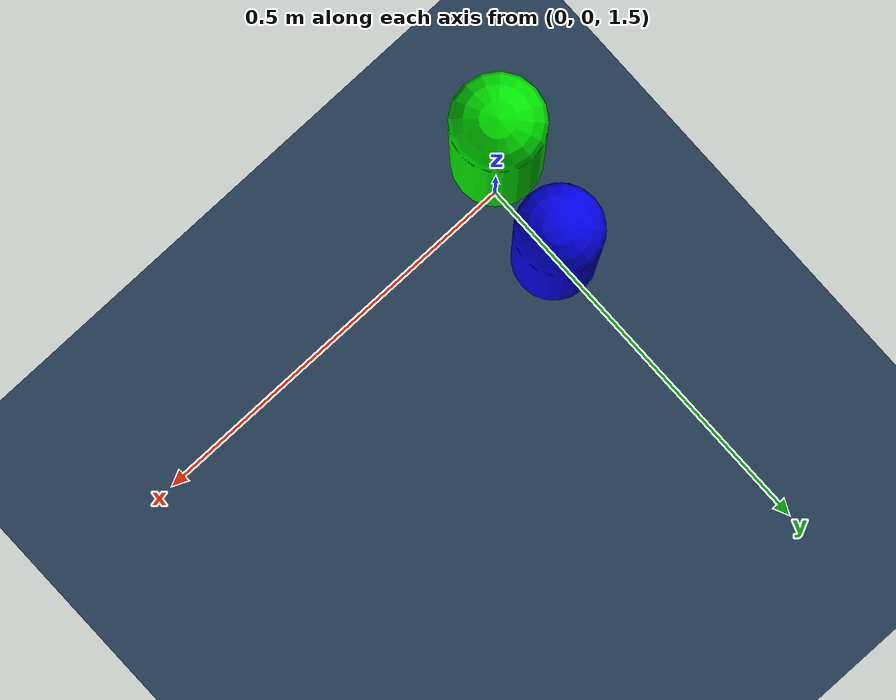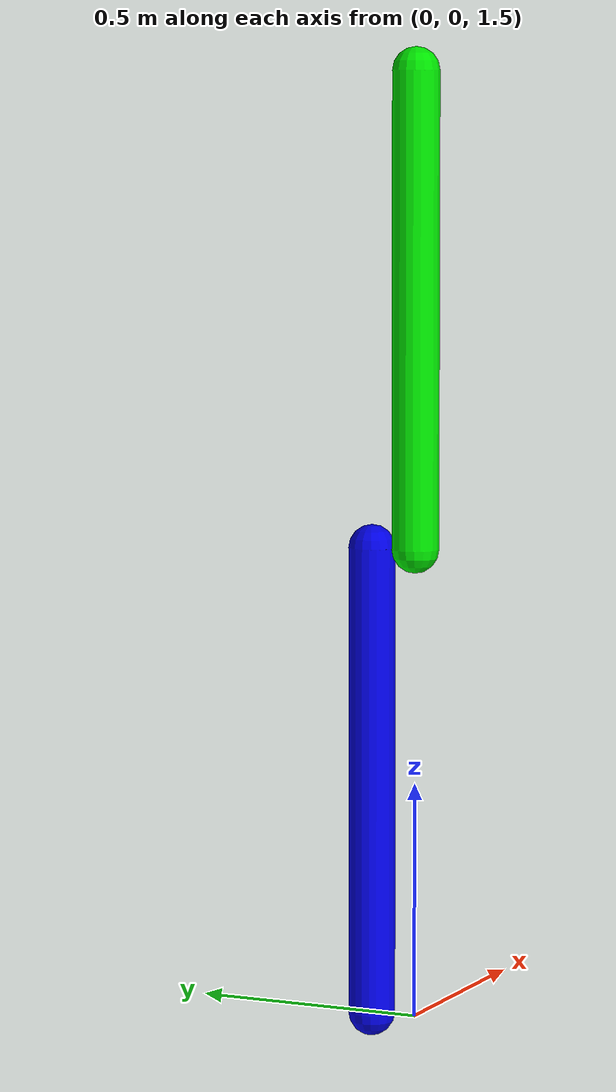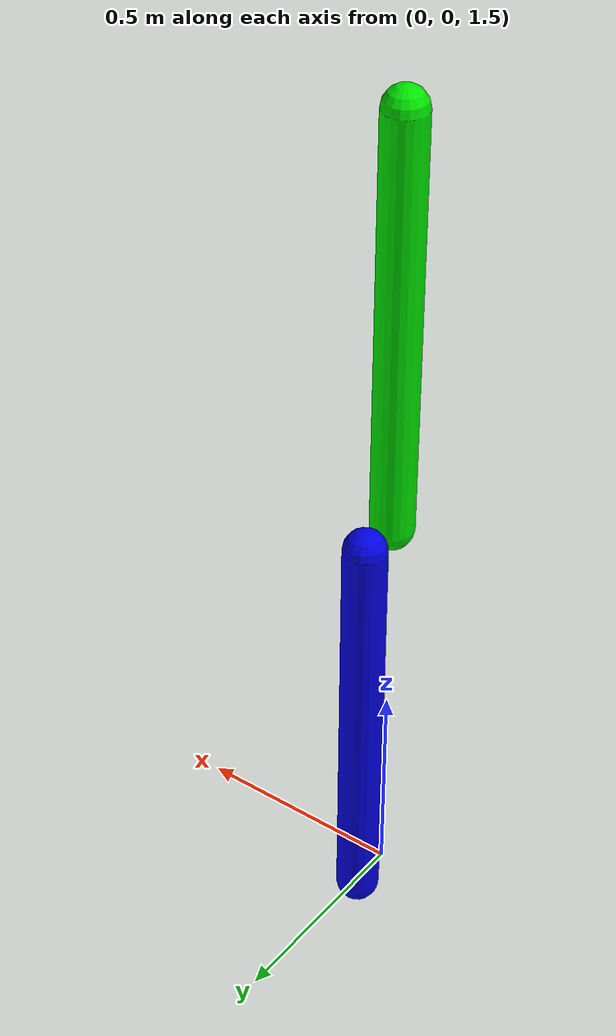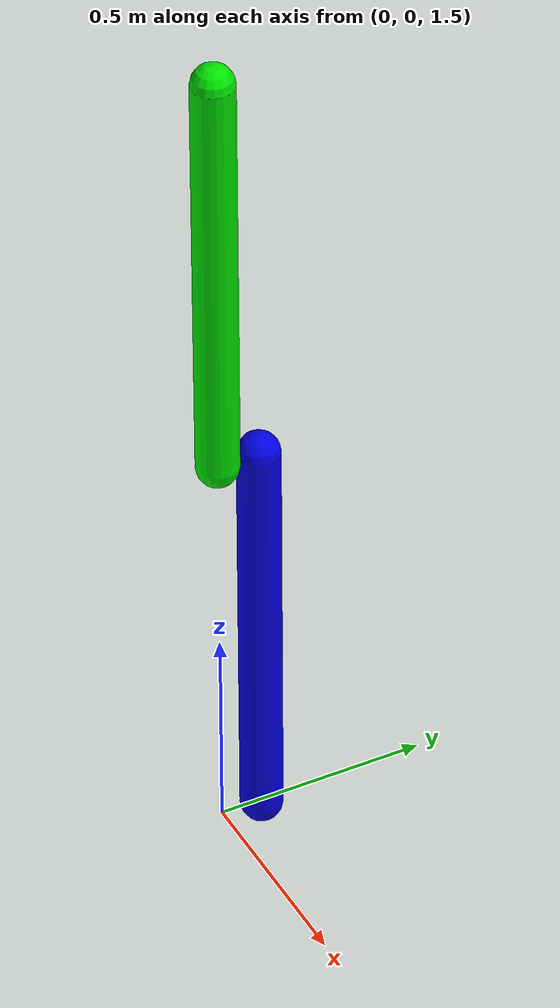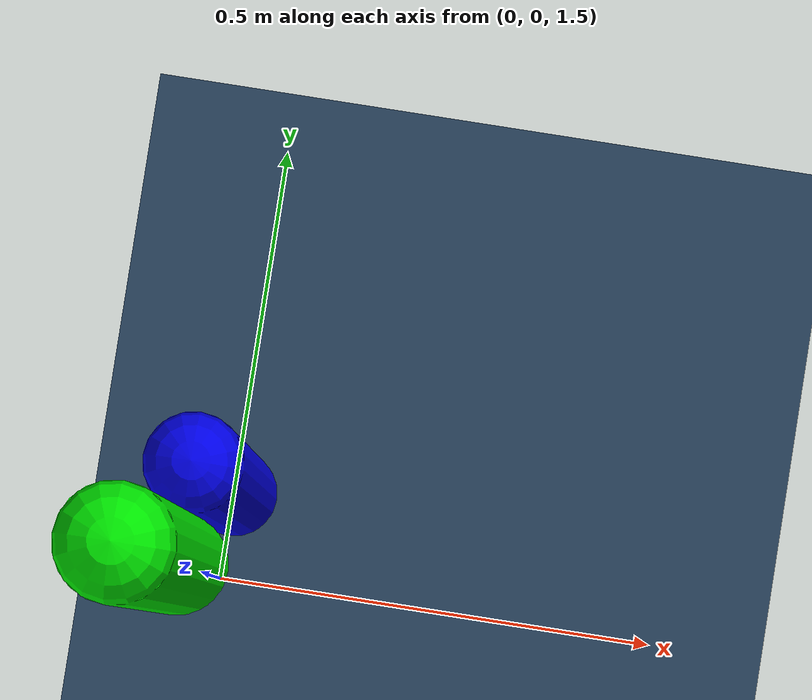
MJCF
<mujoco>
    <option gravity="0 0 -9.81" />
    <asset>
        <material name="green" rgba="0 0.9 0 1" />
        <material name="blue" rgba="0 0 0.9 1" />
        <texture name="grid" type="2d" builtin="checker" width="512" height="512" rgb1=".1 .2 .3" rgb2=".2 .3 .4" />
        <material name="grid" texture="grid" texrepeat="1 1" texuniform="true" reflectance=".2" />
    </asset>

    <worldbody>
        <light diffuse="0.3 0.3 0.3" pos="1 0 3" dir="-1 0 -3" />
        <geom type="plane" size="10 10 0.1"  material="grid" />

        <body pos="0 0 3.0" euler="0 180 0">
            <joint name="joint1" type="hinge" axis="0 -1 0" pos="0 0 -0.5" />
            <geom type="capsule" size="0.05 0.5" mass="1" material="green" />

            <body pos="0 0.1 1" euler="0 0 0">
                <joint name="joint2" type="hinge" axis="0 -1 0" pos="0 0 -0.5"  />
                <geom type="capsule" size="0.05 0.5" mass="1" material="blue" />
            </body>

        </body>
    </worldbody>

    <actuator>
        <motor name="trq_ctrl1" joint="joint1" ctrllimited="true" ctrlrange="-100 100" />
        <motor name="trq_ctrl2" joint="joint2" ctrllimited="true" ctrlrange="-100 100" />
    </actuator>

</mujoco>
